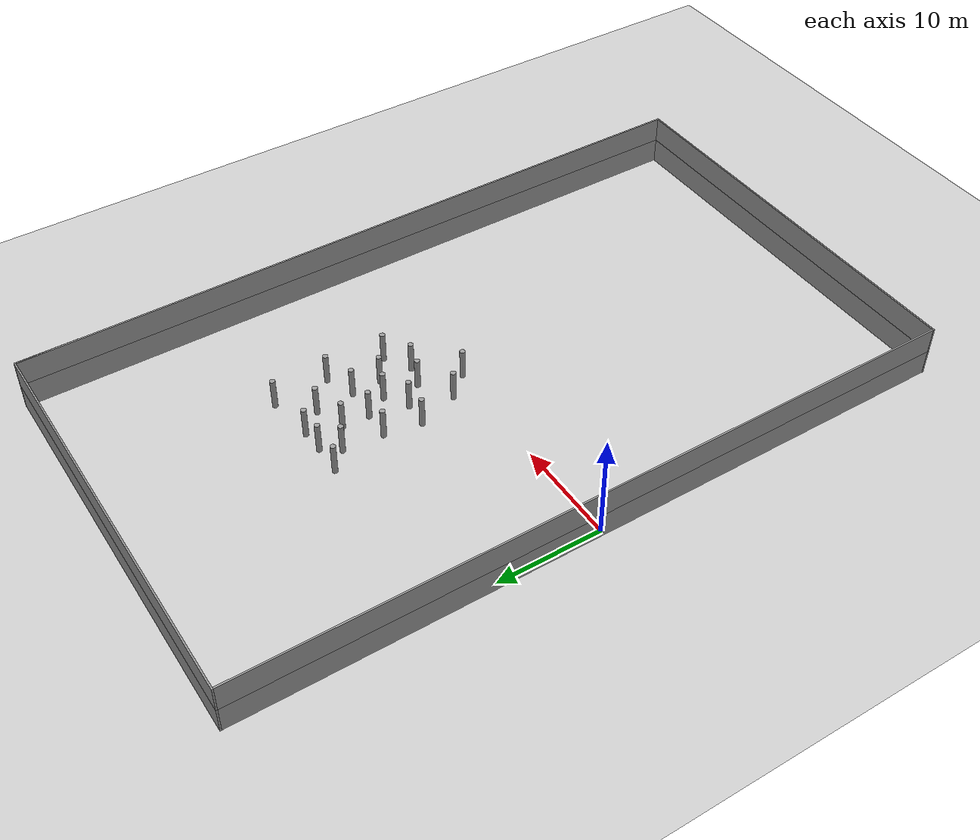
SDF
<sdf version="1.6">
 <world name="default">
  <model name="ground_plane">
   <static>1</static>
   <link name="link">
    <collision name="collision">
     <geometry><plane><normal>0 0 1</normal><size>100 100</size></plane></geometry>
     <surface><friction><ode><mu>100</mu><mu2>50</mu2></ode></friction></surface>
    </collision>
    <visual name="visual">
     <cast_shadows>0</cast_shadows>
     <geometry><plane><normal>0 0 1</normal><size>100 100</size></plane></geometry>
     <material>
      <script><uri>file://media/materials/scripts/gazebo.material</uri><name>Gazebo/Grey</name></script>
     </material>
    </visual>
   </link>
  </model>
  <model name="LjjForest_2">
   <link name="link_0_clone_11">
    <inertial>
     <mass>1</mass>
     <inertia><ixx>0.145833</ixx><ixy>0</ixy><ixz>0</ixz><iyy>0.145833</iyy><iyz>0</iyz><izz>0.125</izz></inertia>
    </inertial>
    <pose>2.92414 -7.00263 0 0 -0 0</pose>
    <visual name="visual">
     <geometry><cylinder><radius>0.25</radius><length>3</length></cylinder></geometry>
     <material>
      <lighting>1</lighting>
      <script><uri>file://media/materials/scripts/gazebo.material</uri><name>Gazebo/Grey</name></script>
      <shader type="vertex"><normal_map>__default__</normal_map></shader>
      <ambient>0.3 0.3 0.3 1</ambient>
      <diffuse>0.7 0.7 0.7 1</diffuse>
      <specular>0.01 0.01 0.01 1</specular>
      <emissive>0 0 0 1</emissive>
     </material>
    </visual>
    <collision name="collision">
     <geometry><cylinder><radius>0.25</radius><length>3</length></cylinder></geometry>
     <surface>
      <friction>
       <ode><mu>1</mu><mu2>1</mu2><fdir1>0 0 0</fdir1><slip1>0</slip1><slip2>0</slip2></ode>
       <torsional>
        <coefficient>1</coefficient>
        <patch_radius>0</patch_radius>
        <surface_radius>0</surface_radius>
        <use_patch_radius>1</use_patch_radius>
        <ode><slip>0</slip></ode>
       </torsional>
      </friction>
      <bounce><restitution_coefficient>0</restitution_coefficient><threshold>1e+06</threshold></bounce>
      <contact>
       <collide_without_contact>0</collide_without_contact>
       <collide_without_contact_bitmask>1</collide_without_contact_bitmask>
       <collide_bitmask>1</collide_bitmask>
       <ode>
        <soft_cfm>0</soft_cfm>
        <soft_erp>0.2</soft_erp>
        <kp>1e+13</kp>
        <kd>1</kd>
        <max_vel>0.01</max_vel>
        <min_depth>0</min_depth>
       </ode>
       <bullet>
        <split_impulse>1</split_impulse>
        <split_impulse_penetration_threshold>-0.01</split_impulse_penetration_threshold>
        <soft_cfm>0</soft_cfm>
        <soft_erp>0.2</soft_erp>
        <kp>1e+13</kp>
        <kd>1</kd>
       </bullet>
      </contact>
     </surface>
    </collision>
   </link>
   <link name="link_0_clone_12">
    <inertial>
     <mass>1</mass>
     <inertia><ixx>0.145833</ixx><ixy>0</ixy><ixz>0</ixz><iyy>0.145833</iyy><iyz>0</iyz><izz>0.125</izz></inertia>
    </inertial>
    <pose>4.76112 -9.06376 0 0 -0 0</pose>
    <visual name="visual">
     <geometry><cylinder><radius>0.25</radius><length>3</length></cylinder></geometry>
     <material>
      <lighting>1</lighting>
      <script><uri>file://media/materials/scripts/gazebo.material</uri><name>Gazebo/Grey</name></script>
      <shader type="vertex"><normal_map>__default__</normal_map></shader>
      <ambient>0.3 0.3 0.3 1</ambient>
      <diffuse>0.7 0.7 0.7 1</diffuse>
      <specular>0.01 0.01 0.01 1</specular>
      <emissive>0 0 0 1</emissive>
     </material>
    </visual>
    <collision name="collision">
     <geometry><cylinder><radius>0.25</radius><length>3</length></cylinder></geometry>
     <surface>
      <friction>
       <ode><mu>1</mu><mu2>1</mu2><fdir1>0 0 0</fdir1><slip1>0</slip1><slip2>0</slip2></ode>
       <torsional>
        <coefficient>1</coefficient>
        <patch_radius>0</patch_radius>
        <surface_radius>0</surface_radius>
        <use_patch_radius>1</use_patch_radius>
        <ode><slip>0</slip></ode>
       </torsional>
      </friction>
      <bounce><restitution_coefficient>0</restitution_coefficient><threshold>1e+06</threshold></bounce>
      <contact>
       <collide_without_contact>0</collide_without_contact>
       <collide_without_contact_bitmask>1</collide_without_contact_bitmask>
       <collide_bitmask>1</collide_bitmask>
       <ode>
        <soft_cfm>0</soft_cfm>
        <soft_erp>0.2</soft_erp>
        <kp>1e+13</kp>
        <kd>1</kd>
        <max_vel>0.01</max_vel>
        <min_depth>0</min_depth>
       </ode>
       <bullet>
        <split_impulse>1</split_impulse>
        <split_impulse_penetration_threshold>-0.01</split_impulse_penetration_threshold>
        <soft_cfm>0</soft_cfm>
        <soft_erp>0.2</soft_erp>
        <kp>1e+13</kp>
        <kd>1</kd>
       </bullet>
      </contact>
     </surface>
    </collision>
   </link>
   <link name="link_0_clone_13">
    <inertial>
     <mass>1</mass>
     <inertia><ixx>0.145833</ixx><ixy>0</ixy><ixz>0</ixz><iyy>0.145833</iyy><iyz>0</iyz><izz>0.125</izz></inertia>
    </inertial>
    <pose>0.731055 -7.10049 0 0 -0 0</pose>
    <visual name="visual">
     <geometry><cylinder><radius>0.25</radius><length>3</length></cylinder></geometry>
     <material>
      <lighting>1</lighting>
      <script><uri>file://media/materials/scripts/gazebo.material</uri><name>Gazebo/Grey</name></script>
      <shader type="vertex"><normal_map>__default__</normal_map></shader>
      <ambient>0.3 0.3 0.3 1</ambient>
      <diffuse>0.7 0.7 0.7 1</diffuse>
      <specular>0.01 0.01 0.01 1</specular>
      <emissive>0 0 0 1</emissive>
     </material>
    </visual>
    <collision name="collision">
     <geometry><cylinder><radius>0.25</radius><length>3</length></cylinder></geometry>
     <surface>
      <friction>
       <ode><mu>1</mu><mu2>1</mu2><fdir1>0 0 0</fdir1><slip1>0</slip1><slip2>0</slip2></ode>
       <torsional>
        <coefficient>1</coefficient>
        <patch_radius>0</patch_radius>
        <surface_radius>0</surface_radius>
        <use_patch_radius>1</use_patch_radius>
        <ode><slip>0</slip></ode>
       </torsional>
      </friction>
      <bounce><restitution_coefficient>0</restitution_coefficient><threshold>1e+06</threshold></bounce>
      <contact>
       <collide_without_contact>0</collide_without_contact>
       <collide_without_contact_bitmask>1</collide_without_contact_bitmask>
       <collide_bitmask>1</collide_bitmask>
       <ode>
        <soft_cfm>0</soft_cfm>
        <soft_erp>0.2</soft_erp>
        <kp>1e+13</kp>
        <kd>1</kd>
        <max_vel>0.01</max_vel>
        <min_depth>0</min_depth>
       </ode>
       <bullet>
        <split_impulse>1</split_impulse>
        <split_impulse_penetration_threshold>-0.01</split_impulse_penetration_threshold>
        <soft_cfm>0</soft_cfm>
        <soft_erp>0.2</soft_erp>
        <kp>1e+13</kp>
        <kd>1</kd>
       </bullet>
      </contact>
     </surface>
    </collision>
   </link>
   <link name="link_0_clone_18">
    <inertial>
     <mass>1</mass>
     <inertia><ixx>0.145833</ixx><ixy>0</ixy><ixz>0</ixz><iyy>0.145833</iyy><iyz>0</iyz><izz>0.125</izz></inertia>
    </inertial>
    <pose>-2.11118 -7.04502 0 0 -0 0</pose>
    <visual name="visual">
     <geometry><cylinder><radius>0.25</radius><length>3</length></cylinder></geometry>
     <material>
      <lighting>1</lighting>
      <script><uri>file://media/materials/scripts/gazebo.material</uri><name>Gazebo/Grey</name></script>
      <shader type="vertex"><normal_map>__default__</normal_map></shader>
      <ambient>0.3 0.3 0.3 1</ambient>
      <diffuse>0.7 0.7 0.7 1</diffuse>
      <specular>0.01 0.01 0.01 1</specular>
      <emissive>0 0 0 1</emissive>
     </material>
    </visual>
    <collision name="collision">
     <geometry><cylinder><radius>0.25</radius><length>3</length></cylinder></geometry>
     <surface>
      <friction>
       <ode><mu>1</mu><mu2>1</mu2><fdir1>0 0 0</fdir1><slip1>0</slip1><slip2>0</slip2></ode>
       <torsional>
        <coefficient>1</coefficient>
        <patch_radius>0</patch_radius>
        <surface_radius>0</surface_radius>
        <use_patch_radius>1</use_patch_radius>
        <ode><slip>0</slip></ode>
       </torsional>
      </friction>
      <bounce><restitution_coefficient>0</restitution_coefficient><threshold>1e+06</threshold></bounce>
      <contact>
       <collide_without_contact>0</collide_without_contact>
       <collide_without_contact_bitmask>1</collide_without_contact_bitmask>
       <collide_bitmask>1</collide_bitmask>
       <ode>
        <soft_cfm>0</soft_cfm>
        <soft_erp>0.2</soft_erp>
        <kp>1e+13</kp>
        <kd>1</kd>
        <max_vel>0.01</max_vel>
        <min_depth>0</min_depth>
       </ode>
       <bullet>
        <split_impulse>1</split_impulse>
        <split_impulse_penetration_threshold>-0.01</split_impulse_penetration_threshold>
        <soft_cfm>0</soft_cfm>
        <soft_erp>0.2</soft_erp>
        <kp>1e+13</kp>
        <kd>1</kd>
       </bullet>
      </contact>
     </surface>
    </collision>
   </link>
   <link name="link_0_clone_19">
    <inertial>
     <mass>1</mass>
     <inertia><ixx>0.145833</ixx><ixy>0</ixy><ixz>0</ixz><iyy>0.145833</iyy><iyz>0</iyz><izz>0.125</izz></inertia>
    </inertial>
    <pose>-0.4391 -8.69513 0 0 -0 0</pose>
    <visual name="visual">
     <geometry><cylinder><radius>0.25</radius><length>3</length></cylinder></geometry>
     <material>
      <lighting>1</lighting>
      <script><uri>file://media/materials/scripts/gazebo.material</uri><name>Gazebo/Grey</name></script>
      <shader type="vertex"><normal_map>__default__</normal_map></shader>
      <ambient>0.3 0.3 0.3 1</ambient>
      <diffuse>0.7 0.7 0.7 1</diffuse>
      <specular>0.01 0.01 0.01 1</specular>
      <emissive>0 0 0 1</emissive>
     </material>
    </visual>
    <collision name="collision">
     <geometry><cylinder><radius>0.25</radius><length>3</length></cylinder></geometry>
     <surface>
      <friction>
       <ode><mu>1</mu><mu2>1</mu2><fdir1>0 0 0</fdir1><slip1>0</slip1><slip2>0</slip2></ode>
       <torsional>
        <coefficient>1</coefficient>
        <patch_radius>0</patch_radius>
        <surface_radius>0</surface_radius>
        <use_patch_radius>1</use_patch_radius>
        <ode><slip>0</slip></ode>
       </torsional>
      </friction>
      <bounce><restitution_coefficient>0</restitution_coefficient><threshold>1e+06</threshold></bounce>
      <contact>
       <collide_without_contact>0</collide_without_contact>
       <collide_without_contact_bitmask>1</collide_without_contact_bitmask>
       <collide_bitmask>1</collide_bitmask>
       <ode>
        <soft_cfm>0</soft_cfm>
        <soft_erp>0.2</soft_erp>
        <kp>1e+13</kp>
        <kd>1</kd>
        <max_vel>0.01</max_vel>
        <min_depth>0</min_depth>
       </ode>
       <bullet>
        <split_impulse>1</split_impulse>
        <split_impulse_penetration_threshold>-0.01</split_impulse_penetration_threshold>
        <soft_cfm>0</soft_cfm>
        <soft_erp>0.2</soft_erp>
        <kp>1e+13</kp>
        <kd>1</kd>
       </bullet>
      </contact>
     </surface>
    </collision>
   </link>
   <link name="link_0_clone_20">
    <inertial>
     <mass>1</mass>
     <inertia><ixx>0.145833</ixx><ixy>0</ixy><ixz>0</ixz><iyy>0.145833</iyy><iyz>0</iyz><izz>0.125</izz></inertia>
    </inertial>
    <pose>1.97365 -10.0303 0 0 -0 0</pose>
    <visual name="visual">
     <geometry><cylinder><radius>0.25</radius><length>3</length></cylinder></geometry>
     <material>
      <lighting>1</lighting>
      <script><uri>file://media/materials/scripts/gazebo.material</uri><name>Gazebo/Grey</name></script>
      <shader type="vertex"><normal_map>__default__</normal_map></shader>
      <ambient>0.3 0.3 0.3 1</ambient>
      <diffuse>0.7 0.7 0.7 1</diffuse>
      <specular>0.01 0.01 0.01 1</specular>
      <emissive>0 0 0 1</emissive>
     </material>
    </visual>
    <collision name="collision">
     <geometry><cylinder><radius>0.25</radius><length>3</length></cylinder></geometry>
     <surface>
      <friction>
       <ode><mu>1</mu><mu2>1</mu2><fdir1>0 0 0</fdir1><slip1>0</slip1><slip2>0</slip2></ode>
       <torsional>
        <coefficient>1</coefficient>
        <patch_radius>0</patch_radius>
        <surface_radius>0</surface_radius>
        <use_patch_radius>1</use_patch_radius>
        <ode><slip>0</slip></ode>
       </torsional>
      </friction>
      <bounce><restitution_coefficient>0</restitution_coefficient><threshold>1e+06</threshold></bounce>
      <contact>
       <collide_without_contact>0</collide_without_contact>
       <collide_without_contact_bitmask>1</collide_without_contact_bitmask>
       <collide_bitmask>1</collide_bitmask>
       <ode>
        <soft_cfm>0</soft_cfm>
        <soft_erp>0.2</soft_erp>
        <kp>1e+13</kp>
        <kd>1</kd>
        <max_vel>0.01</max_vel>
        <min_depth>0</min_depth>
       </ode>
       <bullet>
        <split_impulse>1</split_impulse>
        <split_impulse_penetration_threshold>-0.01</split_impulse_penetration_threshold>
        <soft_cfm>0</soft_cfm>
        <soft_erp>0.2</soft_erp>
        <kp>1e+13</kp>
        <kd>1</kd>
       </bullet>
      </contact>
     </surface>
    </collision>
   </link>
   <static>0</static>
   <pose>19.2308 21.7727 1.49999 0 -0 0.002262</pose>
  </model>
  <model name="LjjForest_3">
   <link name="link_0_clone_0">
    <inertial>
     <mass>1</mass>
     <inertia><ixx>0.145833</ixx><ixy>0</ixy><ixz>0</ixz><iyy>0.145833</iyy><iyz>0</iyz><izz>0.125</izz></inertia>
    </inertial>
    <pose>-0.25253 2.5682 0 0 -0 0</pose>
    <visual name="visual">
     <geometry><cylinder><radius>0.25</radius><length>3</length></cylinder></geometry>
     <material>
      <lighting>1</lighting>
      <script><uri>file://media/materials/scripts/gazebo.material</uri><name>Gazebo/Grey</name></script>
      <shader type="vertex"><normal_map>__default__</normal_map></shader>
      <ambient>0.3 0.3 0.3 1</ambient>
      <diffuse>0.7 0.7 0.7 1</diffuse>
      <specular>0.01 0.01 0.01 1</specular>
      <emissive>0 0 0 1</emissive>
     </material>
    </visual>
    <collision name="collision">
     <geometry><cylinder><radius>0.25</radius><length>3</length></cylinder></geometry>
     <surface>
      <friction>
       <ode><mu>1</mu><mu2>1</mu2><fdir1>0 0 0</fdir1><slip1>0</slip1><slip2>0</slip2></ode>
       <torsional>
        <coefficient>1</coefficient>
        <patch_radius>0</patch_radius>
        <surface_radius>0</surface_radius>
        <use_patch_radius>1</use_patch_radius>
        <ode><slip>0</slip></ode>
       </torsional>
      </friction>
      <bounce><restitution_coefficient>0</restitution_coefficient><threshold>1e+06</threshold></bounce>
      <contact>
       <collide_without_contact>0</collide_without_contact>
       <collide_without_contact_bitmask>1</collide_without_contact_bitmask>
       <collide_bitmask>1</collide_bitmask>
       <ode>
        <soft_cfm>0</soft_cfm>
        <soft_erp>0.2</soft_erp>
        <kp>1e+13</kp>
        <kd>1</kd>
        <max_vel>0.01</max_vel>
        <min_depth>0</min_depth>
       </ode>
       <bullet>
        <split_impulse>1</split_impulse>
        <split_impulse_penetration_threshold>-0.01</split_impulse_penetration_threshold>
        <soft_cfm>0</soft_cfm>
        <soft_erp>0.2</soft_erp>
        <kp>1e+13</kp>
        <kd>1</kd>
       </bullet>
      </contact>
     </surface>
    </collision>
   </link>
   <link name="link_0_clone_2">
    <inertial>
     <mass>1</mass>
     <inertia><ixx>0.145833</ixx><ixy>0</ixy><ixz>0</ixz><iyy>0.145833</iyy><iyz>0</iyz><izz>0.125</izz></inertia>
    </inertial>
    <pose>1.64727 0.418921 0 0 -0 0</pose>
    <visual name="visual">
     <geometry><cylinder><radius>0.25</radius><length>3</length></cylinder></geometry>
     <material>
      <lighting>1</lighting>
      <script><uri>file://media/materials/scripts/gazebo.material</uri><name>Gazebo/Grey</name></script>
      <shader type="vertex"><normal_map>__default__</normal_map></shader>
      <ambient>0.3 0.3 0.3 1</ambient>
      <diffuse>0.7 0.7 0.7 1</diffuse>
      <specular>0.01 0.01 0.01 1</specular>
      <emissive>0 0 0 1</emissive>
     </material>
    </visual>
    <collision name="collision">
     <geometry><cylinder><radius>0.25</radius><length>3</length></cylinder></geometry>
     <surface>
      <friction>
       <ode><mu>1</mu><mu2>1</mu2><fdir1>0 0 0</fdir1><slip1>0</slip1><slip2>0</slip2></ode>
       <torsional>
        <coefficient>1</coefficient>
        <patch_radius>0</patch_radius>
        <surface_radius>0</surface_radius>
        <use_patch_radius>1</use_patch_radius>
        <ode><slip>0</slip></ode>
       </torsional>
      </friction>
      <bounce><restitution_coefficient>0</restitution_coefficient><threshold>1e+06</threshold></bounce>
      <contact>
       <collide_without_contact>0</collide_without_contact>
       <collide_without_contact_bitmask>1</collide_without_contact_bitmask>
       <collide_bitmask>1</collide_bitmask>
       <ode>
        <soft_cfm>0</soft_cfm>
        <soft_erp>0.2</soft_erp>
        <kp>1e+13</kp>
        <kd>1</kd>
        <max_vel>0.01</max_vel>
        <min_depth>0</min_depth>
       </ode>
       <bullet>
        <split_impulse>1</split_impulse>
        <split_impulse_penetration_threshold>-0.01</split_impulse_penetration_threshold>
        <soft_cfm>0</soft_cfm>
        <soft_erp>0.2</soft_erp>
        <kp>1e+13</kp>
        <kd>1</kd>
       </bullet>
      </contact>
     </surface>
    </collision>
   </link>
   <link name="link_0_clone_24">
    <inertial>
     <mass>1</mass>
     <inertia><ixx>0.145833</ixx><ixy>0</ixy><ixz>0</ixz><iyy>0.145833</iyy><iyz>0</iyz><izz>0.125</izz></inertia>
    </inertial>
    <pose>2.92874 7.75131 0 0 -0 0</pose>
    <visual name="visual">
     <geometry><cylinder><radius>0.25</radius><length>3</length></cylinder></geometry>
     <material>
      <lighting>1</lighting>
      <script><uri>file://media/materials/scripts/gazebo.material</uri><name>Gazebo/Grey</name></script>
      <shader type="vertex"><normal_map>__default__</normal_map></shader>
      <ambient>0.3 0.3 0.3 1</ambient>
      <diffuse>0.7 0.7 0.7 1</diffuse>
      <specular>0.01 0.01 0.01 1</specular>
      <emissive>0 0 0 1</emissive>
     </material>
    </visual>
    <collision name="collision">
     <geometry><cylinder><radius>0.25</radius><length>3</length></cylinder></geometry>
     <surface>
      <friction>
       <ode><mu>1</mu><mu2>1</mu2><fdir1>0 0 0</fdir1><slip1>0</slip1><slip2>0</slip2></ode>
       <torsional>
        <coefficient>1</coefficient>
        <patch_radius>0</patch_radius>
        <surface_radius>0</surface_radius>
        <use_patch_radius>1</use_patch_radius>
        <ode><slip>0</slip></ode>
       </torsional>
      </friction>
      <bounce><restitution_coefficient>0</restitution_coefficient><threshold>1e+06</threshold></bounce>
      <contact>
       <collide_without_contact>0</collide_without_contact>
       <collide_without_contact_bitmask>1</collide_without_contact_bitmask>
       <collide_bitmask>1</collide_bitmask>
       <ode>
        <soft_cfm>0</soft_cfm>
        <soft_erp>0.2</soft_erp>
        <kp>1e+13</kp>
        <kd>1</kd>
        <max_vel>0.01</max_vel>
        <min_depth>0</min_depth>
       </ode>
       <bullet>
        <split_impulse>1</split_impulse>
        <split_impulse_penetration_threshold>-0.01</split_impulse_penetration_threshold>
        <soft_cfm>0</soft_cfm>
        <soft_erp>0.2</soft_erp>
        <kp>1e+13</kp>
        <kd>1</kd>
       </bullet>
      </contact>
     </surface>
    </collision>
   </link>
   <link name="link_0_clone_25">
    <inertial>
     <mass>1</mass>
     <inertia><ixx>0.145833</ixx><ixy>0</ixy><ixz>0</ixz><iyy>0.145833</iyy><iyz>0</iyz><izz>0.125</izz></inertia>
    </inertial>
    <pose>4.82479 9.76951 0 0 -0 0</pose>
    <visual name="visual">
     <geometry><cylinder><radius>0.25</radius><length>3</length></cylinder></geometry>
     <material>
      <lighting>1</lighting>
      <script><uri>file://media/materials/scripts/gazebo.material</uri><name>Gazebo/Grey</name></script>
      <shader type="vertex"><normal_map>__default__</normal_map></shader>
      <ambient>0.3 0.3 0.3 1</ambient>
      <diffuse>0.7 0.7 0.7 1</diffuse>
      <specular>0.01 0.01 0.01 1</specular>
      <emissive>0 0 0 1</emissive>
     </material>
    </visual>
    <collision name="collision">
     <geometry><cylinder><radius>0.25</radius><length>3</length></cylinder></geometry>
     <surface>
      <friction>
       <ode><mu>1</mu><mu2>1</mu2><fdir1>0 0 0</fdir1><slip1>0</slip1><slip2>0</slip2></ode>
       <torsional>
        <coefficient>1</coefficient>
        <patch_radius>0</patch_radius>
        <surface_radius>0</surface_radius>
        <use_patch_radius>1</use_patch_radius>
        <ode><slip>0</slip></ode>
       </torsional>
      </friction>
      <bounce><restitution_coefficient>0</restitution_coefficient><threshold>1e+06</threshold></bounce>
      <contact>
       <collide_without_contact>0</collide_without_contact>
       <collide_without_contact_bitmask>1</collide_without_contact_bitmask>
       <collide_bitmask>1</collide_bitmask>
       <ode>
        <soft_cfm>0</soft_cfm>
        <soft_erp>0.2</soft_erp>
        <kp>1e+13</kp>
        <kd>1</kd>
        <max_vel>0.01</max_vel>
        <min_depth>0</min_depth>
       </ode>
       <bullet>
        <split_impulse>1</split_impulse>
        <split_impulse_penetration_threshold>-0.01</split_impulse_penetration_threshold>
        <soft_cfm>0</soft_cfm>
        <soft_erp>0.2</soft_erp>
        <kp>1e+13</kp>
        <kd>1</kd>
       </bullet>
      </contact>
     </surface>
    </collision>
   </link>
   <link name="link_0_clone_26">
    <inertial>
     <mass>1</mass>
     <inertia><ixx>0.145833</ixx><ixy>0</ixy><ixz>0</ixz><iyy>0.145833</iyy><iyz>0</iyz><izz>0.125</izz></inertia>
    </inertial>
    <pose>1.66794 9.91533 0 0 -0 0</pose>
    <visual name="visual">
     <geometry><cylinder><radius>0.25</radius><length>3</length></cylinder></geometry>
     <material>
      <lighting>1</lighting>
      <script><uri>file://media/materials/scripts/gazebo.material</uri><name>Gazebo/Grey</name></script>
      <shader type="vertex"><normal_map>__default__</normal_map></shader>
      <ambient>0.3 0.3 0.3 1</ambient>
      <diffuse>0.7 0.7 0.7 1</diffuse>
      <specular>0.01 0.01 0.01 1</specular>
      <emissive>0 0 0 1</emissive>
     </material>
    </visual>
    <collision name="collision">
     <geometry><cylinder><radius>0.25</radius><length>3</length></cylinder></geometry>
     <surface>
      <friction>
       <ode><mu>1</mu><mu2>1</mu2><fdir1>0 0 0</fdir1><slip1>0</slip1><slip2>0</slip2></ode>
       <torsional>
        <coefficient>1</coefficient>
        <patch_radius>0</patch_radius>
        <surface_radius>0</surface_radius>
        <use_patch_radius>1</use_patch_radius>
        <ode><slip>0</slip></ode>
       </torsional>
      </friction>
      <bounce><restitution_coefficient>0</restitution_coefficient><threshold>1e+06</threshold></bounce>
      <contact>
       <collide_without_contact>0</collide_without_contact>
       <collide_without_contact_bitmask>1</collide_without_contact_bitmask>
       <collide_bitmask>1</collide_bitmask>
       <ode>
        <soft_cfm>0</soft_cfm>
        <soft_erp>0.2</soft_erp>
        <kp>1e+13</kp>
        <kd>1</kd>
        <max_vel>0.01</max_vel>
        <min_depth>0</min_depth>
       </ode>
       <bullet>
        <split_impulse>1</split_impulse>
        <split_impulse_penetration_threshold>-0.01</split_impulse_penetration_threshold>
        <soft_cfm>0</soft_cfm>
        <soft_erp>0.2</soft_erp>
        <kp>1e+13</kp>
        <kd>1</kd>
       </bullet>
      </contact>
     </surface>
    </collision>
   </link>
   <link name="link_0_clone_27">
    <inertial>
     <mass>1</mass>
     <inertia><ixx>0.145833</ixx><ixy>0</ixy><ixz>0</ixz><iyy>0.145833</iyy><iyz>0</iyz><izz>0.125</izz></inertia>
    </inertial>
    <pose>-0.975859 10.0087 0 0 -0 0</pose>
    <visual name="visual">
     <geometry><cylinder><radius>0.25</radius><length>3</length></cylinder></geometry>
     <material>
      <lighting>1</lighting>
      <script><uri>file://media/materials/scripts/gazebo.material</uri><name>Gazebo/Grey</name></script>
      <shader type="vertex"><normal_map>__default__</normal_map></shader>
      <ambient>0.3 0.3 0.3 1</ambient>
      <diffuse>0.7 0.7 0.7 1</diffuse>
      <specular>0.01 0.01 0.01 1</specular>
      <emissive>0 0 0 1</emissive>
     </material>
    </visual>
    <collision name="collision">
     <geometry><cylinder><radius>0.25</radius><length>3</length></cylinder></geometry>
     <surface>
      <friction>
       <ode><mu>1</mu><mu2>1</mu2><fdir1>0 0 0</fdir1><slip1>0</slip1><slip2>0</slip2></ode>
       <torsional>
        <coefficient>1</coefficient>
        <patch_radius>0</patch_radius>
        <surface_radius>0</surface_radius>
        <use_patch_radius>1</use_patch_radius>
        <ode><slip>0</slip></ode>
       </torsional>
      </friction>
      <bounce><restitution_coefficient>0</restitution_coefficient><threshold>1e+06</threshold></bounce>
      <contact>
       <collide_without_contact>0</collide_without_contact>
       <collide_without_contact_bitmask>1</collide_without_contact_bitmask>
       <collide_bitmask>1</collide_bitmask>
       <ode>
        <soft_cfm>0</soft_cfm>
        <soft_erp>0.2</soft_erp>
        <kp>1e+13</kp>
        <kd>1</kd>
        <max_vel>0.01</max_vel>
        <min_depth>0</min_depth>
       </ode>
       <bullet>
        <split_impulse>1</split_impulse>
        <split_impulse_penetration_threshold>-0.01</split_impulse_penetration_threshold>
        <soft_cfm>0</soft_cfm>
        <soft_erp>0.2</soft_erp>
        <kp>1e+13</kp>
        <kd>1</kd>
       </bullet>
      </contact>
     </surface>
    </collision>
   </link>
   <link name="link_0_clone_3">
    <inertial>
     <mass>1</mass>
     <inertia><ixx>0.145833</ixx><ixy>0</ixy><ixz>0</ixz><iyy>0.145833</iyy><iyz>0</iyz><izz>0.125</izz></inertia>
    </inertial>
    <pose>2.76214 4.38882 0 0 -0 0</pose>
    <visual name="visual">
     <geometry><cylinder><radius>0.25</radius><length>3</length></cylinder></geometry>
     <material>
      <lighting>1</lighting>
      <script><uri>file://media/materials/scripts/gazebo.material</uri><name>Gazebo/Grey</name></script>
      <shader type="vertex"><normal_map>__default__</normal_map></shader>
      <ambient>0.3 0.3 0.3 1</ambient>
      <diffuse>0.7 0.7 0.7 1</diffuse>
      <specular>0.01 0.01 0.01 1</specular>
      <emissive>0 0 0 1</emissive>
     </material>
    </visual>
    <collision name="collision">
     <geometry><cylinder><radius>0.25</radius><length>3</length></cylinder></geometry>
     <surface>
      <friction>
       <ode><mu>1</mu><mu2>1</mu2><fdir1>0 0 0</fdir1><slip1>0</slip1><slip2>0</slip2></ode>
       <torsional>
        <coefficient>1</coefficient>
        <patch_radius>0</patch_radius>
        <surface_radius>0</surface_radius>
        <use_patch_radius>1</use_patch_radius>
        <ode><slip>0</slip></ode>
       </torsional>
      </friction>
      <bounce><restitution_coefficient>0</restitution_coefficient><threshold>1e+06</threshold></bounce>
      <contact>
       <collide_without_contact>0</collide_without_contact>
       <collide_without_contact_bitmask>1</collide_without_contact_bitmask>
       <collide_bitmask>1</collide_bitmask>
       <ode>
        <soft_cfm>0</soft_cfm>
        <soft_erp>0.2</soft_erp>
        <kp>1e+13</kp>
        <kd>1</kd>
        <max_vel>0.01</max_vel>
        <min_depth>0</min_depth>
       </ode>
       <bullet>
        <split_impulse>1</split_impulse>
        <split_impulse_penetration_threshold>-0.01</split_impulse_penetration_threshold>
        <soft_cfm>0</soft_cfm>
        <soft_erp>0.2</soft_erp>
        <kp>1e+13</kp>
        <kd>1</kd>
       </bullet>
      </contact>
     </surface>
    </collision>
   </link>
   <link name="link_0_clone_30">
    <inertial>
     <mass>1</mass>
     <inertia><ixx>0.145833</ixx><ixy>0</ixy><ixz>0</ixz><iyy>0.145833</iyy><iyz>0</iyz><izz>0.125</izz></inertia>
    </inertial>
    <pose>4.96935 6.93626 0 0 -0 0</pose>
    <visual name="visual">
     <geometry><cylinder><radius>0.25</radius><length>3</length></cylinder></geometry>
     <material>
      <lighting>1</lighting>
      <script><uri>file://media/materials/scripts/gazebo.material</uri><name>Gazebo/Grey</name></script>
      <shader type="vertex"><normal_map>__default__</normal_map></shader>
      <ambient>0.3 0.3 0.3 1</ambient>
      <diffuse>0.7 0.7 0.7 1</diffuse>
      <specular>0.01 0.01 0.01 1</specular>
      <emissive>0 0 0 1</emissive>
     </material>
    </visual>
    <collision name="collision">
     <geometry><cylinder><radius>0.25</radius><length>3</length></cylinder></geometry>
     <surface>
      <friction>
       <ode><mu>1</mu><mu2>1</mu2><fdir1>0 0 0</fdir1><slip1>0</slip1><slip2>0</slip2></ode>
       <torsional>
        <coefficient>1</coefficient>
        <patch_radius>0</patch_radius>
        <surface_radius>0</surface_radius>
        <use_patch_radius>1</use_patch_radius>
        <ode><slip>0</slip></ode>
       </torsional>
      </friction>
      <bounce><restitution_coefficient>0</restitution_coefficient><threshold>1e+06</threshold></bounce>
      <contact>
       <collide_without_contact>0</collide_without_contact>
       <collide_without_contact_bitmask>1</collide_without_contact_bitmask>
       <collide_bitmask>1</collide_bitmask>
       <ode>
        <soft_cfm>0</soft_cfm>
        <soft_erp>0.2</soft_erp>
        <kp>1e+13</kp>
        <kd>1</kd>
        <max_vel>0.01</max_vel>
        <min_depth>0</min_depth>
       </ode>
       <bullet>
        <split_impulse>1</split_impulse>
        <split_impulse_penetration_threshold>-0.01</split_impulse_penetration_threshold>
        <soft_cfm>0</soft_cfm>
        <soft_erp>0.2</soft_erp>
        <kp>1e+13</kp>
        <kd>1</kd>
       </bullet>
      </contact>
     </surface>
    </collision>
   </link>
   <link name="link_0_clone_31">
    <inertial>
     <mass>1</mass>
     <inertia><ixx>0.145833</ixx><ixy>0</ixy><ixz>0</ixz><iyy>0.145833</iyy><iyz>0</iyz><izz>0.125</izz></inertia>
    </inertial>
    <pose>4.87388 3.77106 0 0 -0 0</pose>
    <visual name="visual">
     <geometry><cylinder><radius>0.25</radius><length>3</length></cylinder></geometry>
     <material>
      <lighting>1</lighting>
      <script><uri>file://media/materials/scripts/gazebo.material</uri><name>Gazebo/Grey</name></script>
      <shader type="vertex"><normal_map>__default__</normal_map></shader>
      <ambient>0.3 0.3 0.3 1</ambient>
      <diffuse>0.7 0.7 0.7 1</diffuse>
      <specular>0.01 0.01 0.01 1</specular>
      <emissive>0 0 0 1</emissive>
     </material>
    </visual>
    <collision name="collision">
     <geometry><cylinder><radius>0.25</radius><length>3</length></cylinder></geometry>
     <surface>
      <friction>
       <ode><mu>1</mu><mu2>1</mu2><fdir1>0 0 0</fdir1><slip1>0</slip1><slip2>0</slip2></ode>
       <torsional>
        <coefficient>1</coefficient>
        <patch_radius>0</patch_radius>
        <surface_radius>0</surface_radius>
        <use_patch_radius>1</use_patch_radius>
        <ode><slip>0</slip></ode>
       </torsional>
      </friction>
      <bounce><restitution_coefficient>0</restitution_coefficient><threshold>1e+06</threshold></bounce>
      <contact>
       <collide_without_contact>0</collide_without_contact>
       <collide_without_contact_bitmask>1</collide_without_contact_bitmask>
       <collide_bitmask>1</collide_bitmask>
       <ode>
        <soft_cfm>0</soft_cfm>
        <soft_erp>0.2</soft_erp>
        <kp>1e+13</kp>
        <kd>1</kd>
        <max_vel>0.01</max_vel>
        <min_depth>0</min_depth>
       </ode>
       <bullet>
        <split_impulse>1</split_impulse>
        <split_impulse_penetration_threshold>-0.01</split_impulse_penetration_threshold>
        <soft_cfm>0</soft_cfm>
        <soft_erp>0.2</soft_erp>
        <kp>1e+13</kp>
        <kd>1</kd>
       </bullet>
      </contact>
     </surface>
    </collision>
   </link>
   <link name="link_0_clone_4">
    <inertial>
     <mass>1</mass>
     <inertia><ixx>0.145833</ixx><ixy>0</ixy><ixz>0</ixz><iyy>0.145833</iyy><iyz>0</iyz><izz>0.125</izz></inertia>
    </inertial>
    <pose>0.858928 6.3824 0 0 -0 0</pose>
    <visual name="visual">
     <geometry><cylinder><radius>0.25</radius><length>3</length></cylinder></geometry>
     <material>
      <lighting>1</lighting>
      <script><uri>file://media/materials/scripts/gazebo.material</uri><name>Gazebo/Grey</name></script>
      <shader type="vertex"><normal_map>__default__</normal_map></shader>
      <ambient>0.3 0.3 0.3 1</ambient>
      <diffuse>0.7 0.7 0.7 1</diffuse>
      <specular>0.01 0.01 0.01 1</specular>
      <emissive>0 0 0 1</emissive>
     </material>
    </visual>
    <collision name="collision">
     <geometry><cylinder><radius>0.25</radius><length>3</length></cylinder></geometry>
     <surface>
      <friction>
       <ode><mu>1</mu><mu2>1</mu2><fdir1>0 0 0</fdir1><slip1>0</slip1><slip2>0</slip2></ode>
       <torsional>
        <coefficient>1</coefficient>
        <patch_radius>0</patch_radius>
        <surface_radius>0</surface_radius>
        <use_patch_radius>1</use_patch_radius>
        <ode><slip>0</slip></ode>
       </torsional>
      </friction>
      <bounce><restitution_coefficient>0</restitution_coefficient><threshold>1e+06</threshold></bounce>
      <contact>
       <collide_without_contact>0</collide_without_contact>
       <collide_without_contact_bitmask>1</collide_without_contact_bitmask>
       <collide_bitmask>1</collide_bitmask>
       <ode>
        <soft_cfm>0</soft_cfm>
        <soft_erp>0.2</soft_erp>
        <kp>1e+13</kp>
        <kd>1</kd>
        <max_vel>0.01</max_vel>
        <min_depth>0</min_depth>
       </ode>
       <bullet>
        <split_impulse>1</split_impulse>
        <split_impulse_penetration_threshold>-0.01</split_impulse_penetration_threshold>
        <soft_cfm>0</soft_cfm>
        <soft_erp>0.2</soft_erp>
        <kp>1e+13</kp>
        <kd>1</kd>
       </bullet>
      </contact>
     </surface>
    </collision>
   </link>
   <link name="link_0_clone_5">
    <inertial>
     <mass>1</mass>
     <inertia><ixx>0.145833</ixx><ixy>0</ixy><ixz>0</ixz><iyy>0.145833</iyy><iyz>0</iyz><izz>0.125</izz></inertia>
    </inertial>
    <pose>-1.56065 6.53618 0 0 -0 0</pose>
    <visual name="visual">
     <geometry><cylinder><radius>0.25</radius><length>3</length></cylinder></geometry>
     <material>
      <lighting>1</lighting>
      <script><uri>file://media/materials/scripts/gazebo.material</uri><name>Gazebo/Grey</name></script>
      <shader type="vertex"><normal_map>__default__</normal_map></shader>
      <ambient>0.3 0.3 0.3 1</ambient>
      <diffuse>0.7 0.7 0.7 1</diffuse>
      <specular>0.01 0.01 0.01 1</specular>
      <emissive>0 0 0 1</emissive>
     </material>
    </visual>
    <collision name="collision">
     <geometry><cylinder><radius>0.25</radius><length>3</length></cylinder></geometry>
     <surface>
      <friction>
       <ode><mu>1</mu><mu2>1</mu2><fdir1>0 0 0</fdir1><slip1>0</slip1><slip2>0</slip2></ode>
       <torsional>
        <coefficient>1</coefficient>
        <patch_radius>0</patch_radius>
        <surface_radius>0</surface_radius>
        <use_patch_radius>1</use_patch_radius>
        <ode><slip>0</slip></ode>
       </torsional>
      </friction>
      <bounce><restitution_coefficient>0</restitution_coefficient><threshold>1e+06</threshold></bounce>
      <contact>
       <collide_without_contact>0</collide_without_contact>
       <collide_without_contact_bitmask>1</collide_without_contact_bitmask>
       <collide_bitmask>1</collide_bitmask>
       <ode>
        <soft_cfm>0</soft_cfm>
        <soft_erp>0.2</soft_erp>
        <kp>1e+13</kp>
        <kd>1</kd>
        <max_vel>0.01</max_vel>
        <min_depth>0</min_depth>
       </ode>
       <bullet>
        <split_impulse>1</split_impulse>
        <split_impulse_penetration_threshold>-0.01</split_impulse_penetration_threshold>
        <soft_cfm>0</soft_cfm>
        <soft_erp>0.2</soft_erp>
        <kp>1e+13</kp>
        <kd>1</kd>
       </bullet>
      </contact>
     </surface>
    </collision>
   </link>
   <static>0</static>
   <pose>19.5094 -0.740182 1.49999 0 -0 0.002244</pose>
  </model>
  <model name="LjjForest_5">
   <link name="link_0_clone_22">
    <inertial>
     <mass>1</mass>
     <inertia><ixx>0.145833</ixx><ixy>0</ixy><ixz>0</ixz><iyy>0.145833</iyy><iyz>0</iyz><izz>0.125</izz></inertia>
    </inertial>
    <pose>-5.1094 -7.26741 0 0 -0 0</pose>
    <visual name="visual">
     <geometry><cylinder><radius>0.25</radius><length>3</length></cylinder></geometry>
     <material>
      <lighting>1</lighting>
      <script><uri>file://media/materials/scripts/gazebo.material</uri><name>Gazebo/Grey</name></script>
      <shader type="vertex"><normal_map>__default__</normal_map></shader>
      <ambient>0.3 0.3 0.3 1</ambient>
      <diffuse>0.7 0.7 0.7 1</diffuse>
      <specular>0.01 0.01 0.01 1</specular>
      <emissive>0 0 0 1</emissive>
     </material>
    </visual>
    <collision name="collision">
     <geometry><cylinder><radius>0.25</radius><length>3</length></cylinder></geometry>
     <surface>
      <friction>
       <ode><mu>1</mu><mu2>1</mu2><fdir1>0 0 0</fdir1><slip1>0</slip1><slip2>0</slip2></ode>
       <torsional>
        <coefficient>1</coefficient>
        <patch_radius>0</patch_radius>
        <surface_radius>0</surface_radius>
        <use_patch_radius>1</use_patch_radius>
        <ode><slip>0</slip></ode>
       </torsional>
      </friction>
      <bounce><restitution_coefficient>0</restitution_coefficient><threshold>1e+06</threshold></bounce>
      <contact>
       <collide_without_contact>0</collide_without_contact>
       <collide_without_contact_bitmask>1</collide_without_contact_bitmask>
       <collide_bitmask>1</collide_bitmask>
       <ode>
        <soft_cfm>0</soft_cfm>
        <soft_erp>0.2</soft_erp>
        <kp>1e+13</kp>
        <kd>1</kd>
        <max_vel>0.01</max_vel>
        <min_depth>0</min_depth>
       </ode>
       <bullet>
        <split_impulse>1</split_impulse>
        <split_impulse_penetration_threshold>-0.01</split_impulse_penetration_threshold>
        <soft_cfm>0</soft_cfm>
        <soft_erp>0.2</soft_erp>
        <kp>1e+13</kp>
        <kd>1</kd>
       </bullet>
      </contact>
     </surface>
    </collision>
   </link>
   <static>0</static>
   <pose>31.8329 22.65 1.49999 0 -0 0.00223</pose>
  </model>
  <model name="LjjForest_6">
   <link name="link_0_clone_23">
    <inertial>
     <mass>1</mass>
     <inertia><ixx>0.145833</ixx><ixy>0</ixy><ixz>0</ixz><iyy>0.145833</iyy><iyz>0</iyz><izz>0.125</izz></inertia>
    </inertial>
    <pose>-5.66615 4.05911 0 0 -0 0</pose>
    <visual name="visual">
     <geometry><cylinder><radius>0.25</radius><length>3</length></cylinder></geometry>
     <material>
      <lighting>1</lighting>
      <script><uri>file://media/materials/scripts/gazebo.material</uri><name>Gazebo/Grey</name></script>
      <shader type="vertex"><normal_map>__default__</normal_map></shader>
      <ambient>0.3 0.3 0.3 1</ambient>
      <diffuse>0.7 0.7 0.7 1</diffuse>
      <specular>0.01 0.01 0.01 1</specular>
      <emissive>0 0 0 1</emissive>
     </material>
    </visual>
    <collision name="collision">
     <geometry><cylinder><radius>0.25</radius><length>3</length></cylinder></geometry>
     <surface>
      <friction>
       <ode><mu>1</mu><mu2>1</mu2><fdir1>0 0 0</fdir1><slip1>0</slip1><slip2>0</slip2></ode>
       <torsional>
        <coefficient>1</coefficient>
        <patch_radius>0</patch_radius>
        <surface_radius>0</surface_radius>
        <use_patch_radius>1</use_patch_radius>
        <ode><slip>0</slip></ode>
       </torsional>
      </friction>
      <bounce><restitution_coefficient>0</restitution_coefficient><threshold>1e+06</threshold></bounce>
      <contact>
       <collide_without_contact>0</collide_without_contact>
       <collide_without_contact_bitmask>1</collide_without_contact_bitmask>
       <collide_bitmask>1</collide_bitmask>
       <ode>
        <soft_cfm>0</soft_cfm>
        <soft_erp>0.2</soft_erp>
        <kp>1e+13</kp>
        <kd>1</kd>
        <max_vel>0.01</max_vel>
        <min_depth>0</min_depth>
       </ode>
       <bullet>
        <split_impulse>1</split_impulse>
        <split_impulse_penetration_threshold>-0.01</split_impulse_penetration_threshold>
        <soft_cfm>0</soft_cfm>
        <soft_erp>0.2</soft_erp>
        <kp>1e+13</kp>
        <kd>1</kd>
       </bullet>
      </contact>
     </surface>
    </collision>
   </link>
   <link name="link_0_clone_29">
    <inertial>
     <mass>1</mass>
     <inertia><ixx>0.145833</ixx><ixy>0</ixy><ixz>0</ixz><iyy>0.145833</iyy><iyz>0</iyz><izz>0.125</izz></inertia>
    </inertial>
    <pose>-5.38645 9.63545 0 0 -0 0</pose>
    <visual name="visual">
     <geometry><cylinder><radius>0.25</radius><length>3</length></cylinder></geometry>
     <material>
      <lighting>1</lighting>
      <script><uri>file://media/materials/scripts/gazebo.material</uri><name>Gazebo/Grey</name></script>
      <shader type="vertex"><normal_map>__default__</normal_map></shader>
      <ambient>0.3 0.3 0.3 1</ambient>
      <diffuse>0.7 0.7 0.7 1</diffuse>
      <specular>0.01 0.01 0.01 1</specular>
      <emissive>0 0 0 1</emissive>
     </material>
    </visual>
    <collision name="collision">
     <geometry><cylinder><radius>0.25</radius><length>3</length></cylinder></geometry>
     <surface>
      <friction>
       <ode><mu>1</mu><mu2>1</mu2><fdir1>0 0 0</fdir1><slip1>0</slip1><slip2>0</slip2></ode>
       <torsional>
        <coefficient>1</coefficient>
        <patch_radius>0</patch_radius>
        <surface_radius>0</surface_radius>
        <use_patch_radius>1</use_patch_radius>
        <ode><slip>0</slip></ode>
       </torsional>
      </friction>
      <bounce><restitution_coefficient>0</restitution_coefficient><threshold>1e+06</threshold></bounce>
      <contact>
       <collide_without_contact>0</collide_without_contact>
       <collide_without_contact_bitmask>1</collide_without_contact_bitmask>
       <collide_bitmask>1</collide_bitmask>
       <ode>
        <soft_cfm>0</soft_cfm>
        <soft_erp>0.2</soft_erp>
        <kp>1e+13</kp>
        <kd>1</kd>
        <max_vel>0.01</max_vel>
        <min_depth>0</min_depth>
       </ode>
       <bullet>
        <split_impulse>1</split_impulse>
        <split_impulse_penetration_threshold>-0.01</split_impulse_penetration_threshold>
        <soft_cfm>0</soft_cfm>
        <soft_erp>0.2</soft_erp>
        <kp>1e+13</kp>
        <kd>1</kd>
       </bullet>
      </contact>
     </surface>
    </collision>
   </link>
   <static>0</static>
   <pose>32.4934 0.445703 1.5 0 -0 0.002209</pose>
  </model>
  <model name="PaperTestForestWall2_0">
   <pose>19 -0.744131 0 0 -0 0</pose>
   <link name="Wall_21">
    <collision name="Wall_21_Collision">
     <geometry><box><size>5.75 0.15 2.5</size></box></geometry>
     <pose>0 0 1.25 0 -0 0</pose>
    </collision>
    <visual name="Wall_21_Visual">
     <pose>0 0 1.25 0 -0 0</pose>
     <geometry><box><size>5.75 0.15 2.5</size></box></geometry>
     <material>
      <script><uri>file://media/materials/scripts/gazebo.material</uri><name>Gazebo/Grey</name></script>
      <ambient>1 1 1 1</ambient>
     </material>
     <meta><layer>0</layer></meta>
    </visual>
    <pose>19.4381 31.4458 0 0 -0 1.5708</pose>
   </link>
   <link name="Wall_22">
    <collision name="Wall_22_Collision">
     <geometry><box><size>39 0.15 2.5</size></box></geometry>
     <pose>0 0 1.25 0 -0 0</pose>
    </collision>
    <visual name="Wall_22_Visual">
     <pose>0 0 1.25 0 -0 0</pose>
     <geometry><box><size>39 0.15 2.5</size></box></geometry>
     <material>
      <script><uri>file://media/materials/scripts/gazebo.material</uri><name>Gazebo/Grey</name></script>
      <ambient>1 1 1 1</ambient>
     </material>
     <meta><layer>0</layer></meta>
    </visual>
    <pose>0.013133 34.2458 0 0 -0 3.14159</pose>
   </link>
   <link name="Wall_23">
    <collision name="Wall_23_Collision">
     <geometry><box><size>68.5 0.15 2.5</size></box></geometry>
     <pose>0 0 1.25 0 -0 0</pose>
    </collision>
    <visual name="Wall_23_Visual">
     <pose>0 0 1.25 0 -0 0</pose>
     <geometry><box><size>68.5 0.15 2.5</size></box></geometry>
     <material>
      <script><uri>file://media/materials/scripts/gazebo.material</uri><name>Gazebo/Grey</name></script>
      <ambient>1 1 1 1</ambient>
     </material>
     <meta><layer>0</layer></meta>
    </visual>
    <pose>-19.4119 0.070788 0 0 -0 -1.5708</pose>
   </link>
   <link name="Wall_26">
    <collision name="Wall_26_Collision">
     <geometry><box><size>68.5 0.15 2.5</size></box></geometry>
     <pose>0 0 1.25 0 -0 0</pose>
    </collision>
    <visual name="Wall_26_Visual">
     <pose>0 0 1.25 0 -0 0</pose>
     <geometry><box><size>68.5 0.15 2.5</size></box></geometry>
     <material>
      <script><uri>file://media/materials/scripts/gazebo.material</uri><name>Gazebo/Grey</name></script>
      <ambient>1 1 1 1</ambient>
     </material>
     <meta><layer>0</layer></meta>
    </visual>
    <pose>19.4119 -0.070788 0 0 -0 1.5708</pose>
   </link>
   <link name="Wall_30">
    <collision name="Wall_30_Collision">
     <geometry><box><size>39 0.15 2.5</size></box></geometry>
     <pose>0 0 1.25 0 -0 0</pose>
    </collision>
    <visual name="Wall_30_Visual">
     <pose>0 0 1.25 0 -0 0</pose>
     <geometry><box><size>39 0.15 2.5</size></box></geometry>
     <material>
      <script><uri>file://media/materials/scripts/gazebo.material</uri><name>Gazebo/Grey</name></script>
      <ambient>1 1 1 1</ambient>
     </material>
     <meta><layer>0</layer></meta>
    </visual>
    <pose>-0.013135 -34.2458 0 0 -0 3.14159</pose>
   </link>
   <static>1</static>
  </model>
  <model name="PaperTestForestWall2">
   <pose>19 -0.744131 2.5 0 -0 0</pose>
   <link name="Wall_21">
    <collision name="Wall_21_Collision">
     <geometry><box><size>5.75 0.15 2.5</size></box></geometry>
     <pose>0 0 1.25 0 -0 0</pose>
    </collision>
    <visual name="Wall_21_Visual">
     <pose>0 0 1.25 0 -0 0</pose>
     <geometry><box><size>5.75 0.15 2.5</size></box></geometry>
     <material>
      <script><uri>file://media/materials/scripts/gazebo.material</uri><name>Gazebo/Grey</name></script>
      <ambient>1 1 1 1</ambient>
     </material>
     <meta><layer>0</layer></meta>
    </visual>
    <pose>19.4381 31.4458 0 0 -0 1.5708</pose>
   </link>
   <link name="Wall_22">
    <collision name="Wall_22_Collision">
     <geometry><box><size>39 0.15 2.5</size></box></geometry>
     <pose>0 0 1.25 0 -0 0</pose>
    </collision>
    <visual name="Wall_22_Visual">
     <pose>0 0 1.25 0 -0 0</pose>
     <geometry><box><size>39 0.15 2.5</size></box></geometry>
     <material>
      <script><uri>file://media/materials/scripts/gazebo.material</uri><name>Gazebo/Grey</name></script>
      <ambient>1 1 1 1</ambient>
     </material>
     <meta><layer>0</layer></meta>
    </visual>
    <pose>0.013133 34.2458 0 0 -0 3.14159</pose>
   </link>
   <link name="Wall_23">
    <collision name="Wall_23_Collision">
     <geometry><box><size>68.5 0.15 2.5</size></box></geometry>
     <pose>0 0 1.25 0 -0 0</pose>
    </collision>
    <visual name="Wall_23_Visual">
     <pose>0 0 1.25 0 -0 0</pose>
     <geometry><box><size>68.5 0.15 2.5</size></box></geometry>
     <material>
      <script><uri>file://media/materials/scripts/gazebo.material</uri><name>Gazebo/Grey</name></script>
      <ambient>1 1 1 1</ambient>
     </material>
     <meta><layer>0</layer></meta>
    </visual>
    <pose>-19.4119 0.070788 0 0 -0 -1.5708</pose>
   </link>
   <link name="Wall_26">
    <collision name="Wall_26_Collision">
     <geometry><box><size>68.5 0.15 2.5</size></box></geometry>
     <pose>0 0 1.25 0 -0 0</pose>
    </collision>
    <visual name="Wall_26_Visual">
     <pose>0 0 1.25 0 -0 0</pose>
     <geometry><box><size>68.5 0.15 2.5</size></box></geometry>
     <material>
      <script><uri>file://media/materials/scripts/gazebo.material</uri><name>Gazebo/Grey</name></script>
      <ambient>1 1 1 1</ambient>
     </material>
     <meta><layer>0</layer></meta>
    </visual>
    <pose>19.4119 -0.070788 0 0 -0 1.5708</pose>
   </link>
   <link name="Wall_30">
    <collision name="Wall_30_Collision">
     <geometry><box><size>39 0.15 2.5</size></box></geometry>
     <pose>0 0 1.25 0 -0 0</pose>
    </collision>
    <visual name="Wall_30_Visual">
     <pose>0 0 1.25 0 -0 0</pose>
     <geometry><box><size>39 0.15 2.5</size></box></geometry>
     <material>
      <script><uri>file://media/materials/scripts/gazebo.material</uri><name>Gazebo/Grey</name></script>
      <ambient>1 1 1 1</ambient>
     </material>
     <meta><layer>0</layer></meta>
    </visual>
    <pose>-0.013135 -34.2458 0 0 -0 3.14159</pose>
   </link>
   <static>1</static>
  </model>
 </world>
</sdf>
